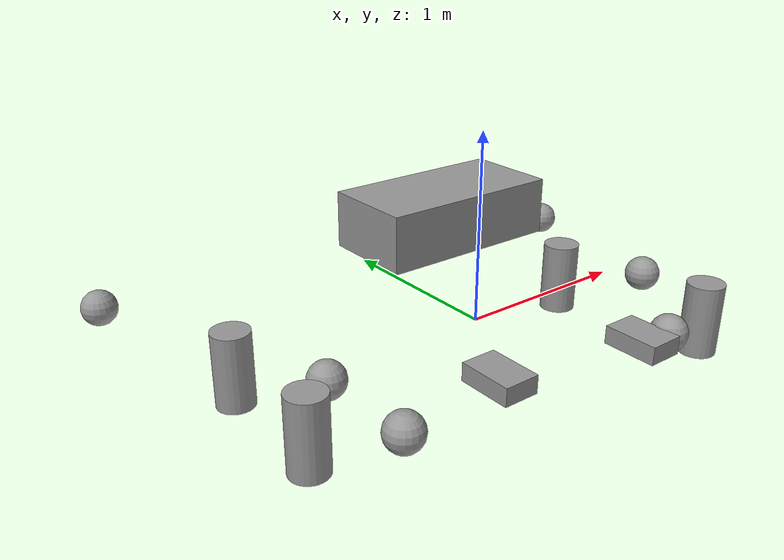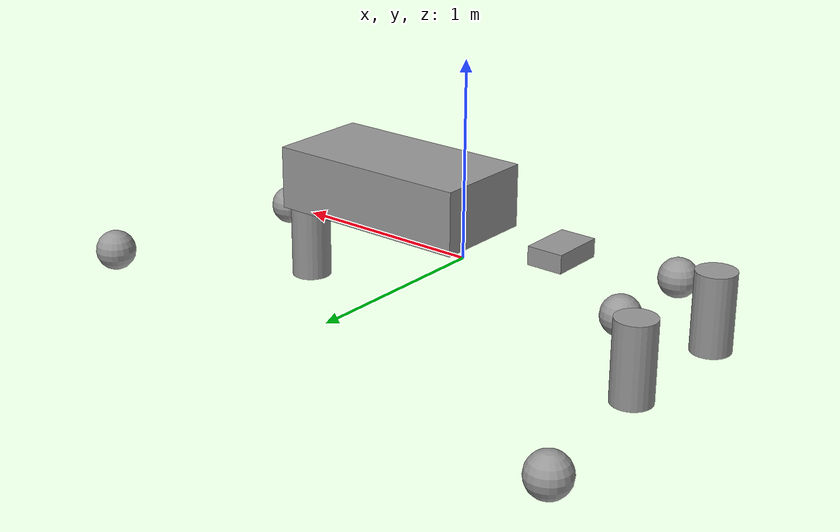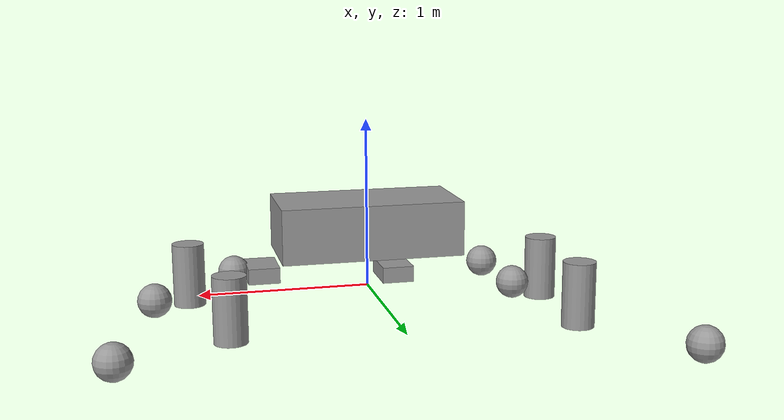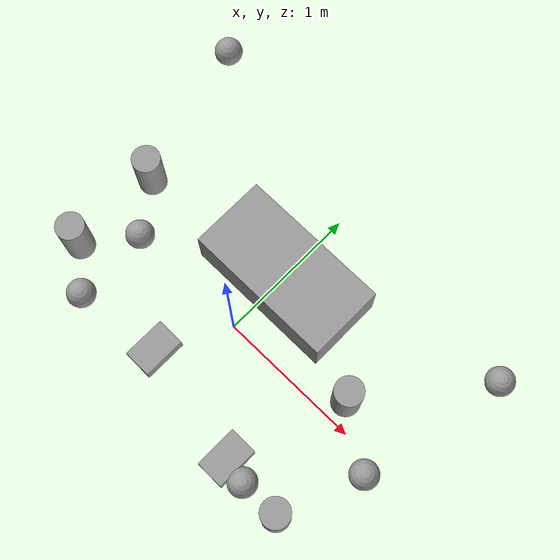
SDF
<?xml version='1.0'?>
<sdf version='1.6'>
  <model name='LegsBot'>
    <link name='link_0'>
      <pose frame=''>0.088459 0.39217 0.461538 0 -0 0</pose>
      <inertial>
        <mass>1</mass>
        <inertia>
          <ixx>0.166667</ixx>
          <ixy>0</ixy>
          <ixz>0</ixz>
          <iyy>0.166667</iyy>
          <iyz>0</iyz>
          <izz>0.166667</izz>
        </inertia>
        <pose frame=''>0 0 0 0 -0 0</pose>
      </inertial>
      <gravity>1</gravity>
      <self_collide>0</self_collide>
      <kinematic>0</kinematic>
      <visual name='visual'>
        <pose frame=''>0 0 0 0 -0 0</pose>
        <geometry>
          <box>
            <size>1 0.5 0.3</size>
          </box>
        </geometry>
        <material>
          <lighting>1</lighting>
          <script>
            <uri>file://media/materials/scripts/gazebo.material</uri>
            <name>Gazebo/Grey</name>
          </script>
          <shader type='pixel'>
            <normal_map>__default__</normal_map>
          </shader>
          <ambient>0.3 0.3 0.3 1</ambient>
          <diffuse>0.7 0.7 0.7 1</diffuse>
          <specular>0.01 0.01 0.01 1</specular>
          <emissive>0 0 0 1</emissive>
        </material>
        <transparency>0</transparency>
        <cast_shadows>1</cast_shadows>
      </visual>
      <collision name='collision'>
        <laser_retro>0</laser_retro>
        <max_contacts>10</max_contacts>
        <pose frame=''>0 0 0 0 -0 0</pose>
        <geometry>
          <box>
            <size>1 0.5 0.3</size>
          </box>
        </geometry>
        <surface>
          <friction>
            <ode>
              <mu>1</mu>
              <mu2>1</mu2>
              <fdir1>0 0 0</fdir1>
              <slip1>0</slip1>
              <slip2>0</slip2>
            </ode>
            <torsional>
              <coefficient>1</coefficient>
              <patch_radius>0</patch_radius>
              <surface_radius>0</surface_radius>
              <use_patch_radius>1</use_patch_radius>
              <ode>
                <slip>0</slip>
              </ode>
            </torsional>
          </friction>
          <bounce>
            <restitution_coefficient>0</restitution_coefficient>
            <threshold>1e+06</threshold>
          </bounce>
          <contact>
            <collide_without_contact>0</collide_without_contact>
            <collide_without_contact_bitmask>1</collide_without_contact_bitmask>
            <collide_bitmask>1</collide_bitmask>
            <ode>
              <soft_cfm>0</soft_cfm>
              <soft_erp>0.2</soft_erp>
              <kp>1e+13</kp>
              <kd>1</kd>
              <max_vel>0.01</max_vel>
              <min_depth>0</min_depth>
            </ode>
            <bullet>
              <split_impulse>1</split_impulse>
              <split_impulse_penetration_threshold>-0.01</split_impulse_penetration_threshold>
              <soft_cfm>0</soft_cfm>
              <soft_erp>0.2</soft_erp>
              <kp>1e+13</kp>
              <kd>1</kd>
            </bullet>
          </contact>
        </surface>
      </collision>
    </link>
    <link name='link_1'>
      <pose frame=''>-1.48034 1.40885 -0.038462 0 -0 0</pose>
      <inertial>
        <mass>1</mass>
        <inertia>
          <ixx>0.1</ixx>
          <ixy>0</ixy>
          <ixz>0</ixz>
          <iyy>0.1</iyy>
          <iyz>0</iyz>
          <izz>0.1</izz>
        </inertia>
        <pose frame=''>0 0 0 0 -0 0</pose>
      </inertial>
      <gravity>1</gravity>
      <self_collide>0</self_collide>
      <kinematic>0</kinematic>
      <visual name='visual'>
        <pose frame=''>0 0 0 0 -0 0</pose>
        <geometry>
          <sphere>
            <radius>0.1</radius>
          </sphere>
        </geometry>
        <material>
          <lighting>1</lighting>
          <script>
            <uri>file://media/materials/scripts/gazebo.material</uri>
            <name>Gazebo/Grey</name>
          </script>
          <shader type='pixel'>
            <normal_map>__default__</normal_map>
          </shader>
          <ambient>0.3 0.3 0.3 1</ambient>
          <diffuse>0.7 0.7 0.7 1</diffuse>
          <specular>0.01 0.01 0.01 1</specular>
          <emissive>0 0 0 1</emissive>
        </material>
        <transparency>0</transparency>
        <cast_shadows>1</cast_shadows>
      </visual>
      <collision name='collision'>
        <laser_retro>0</laser_retro>
        <max_contacts>10</max_contacts>
        <pose frame=''>0 0 0 0 -0 0</pose>
        <geometry>
          <sphere>
            <radius>0.1</radius>
          </sphere>
        </geometry>
        <surface>
          <friction>
            <ode>
              <mu>1</mu>
              <mu2>1</mu2>
              <fdir1>0 0 0</fdir1>
              <slip1>0</slip1>
              <slip2>0</slip2>
            </ode>
            <torsional>
              <coefficient>1</coefficient>
              <patch_radius>0</patch_radius>
              <surface_radius>0</surface_radius>
              <use_patch_radius>1</use_patch_radius>
              <ode>
                <slip>0</slip>
              </ode>
            </torsional>
          </friction>
          <bounce>
            <restitution_coefficient>0</restitution_coefficient>
            <threshold>1e+06</threshold>
          </bounce>
          <contact>
            <collide_without_contact>0</collide_without_contact>
            <collide_without_contact_bitmask>1</collide_without_contact_bitmask>
            <collide_bitmask>1</collide_bitmask>
            <ode>
              <soft_cfm>0</soft_cfm>
              <soft_erp>0.2</soft_erp>
              <kp>1e+13</kp>
              <kd>1</kd>
              <max_vel>0.01</max_vel>
              <min_depth>0</min_depth>
            </ode>
            <bullet>
              <split_impulse>1</split_impulse>
              <split_impulse_penetration_threshold>-0.01</split_impulse_penetration_threshold>
              <soft_cfm>0</soft_cfm>
              <soft_erp>0.2</soft_erp>
              <kp>1e+13</kp>
              <kd>1</kd>
            </bullet>
          </contact>
        </surface>
      </collision>
    </link>
    <link name='link_1_clone'>
      <pose frame=''>1.47226 0.949936 -0.038462 0 -0 0</pose>
      <inertial>
        <mass>1</mass>
        <inertia>
          <ixx>0.1</ixx>
          <ixy>0</ixy>
          <ixz>0</ixz>
          <iyy>0.1</iyy>
          <iyz>0</iyz>
          <izz>0.1</izz>
        </inertia>
        <pose frame=''>0 0 0 0 -0 0</pose>
      </inertial>
      <self_collide>0</self_collide>
      <kinematic>0</kinematic>
      <visual name='visual'>
        <pose frame=''>0 0 0 0 -0 0</pose>
        <geometry>
          <sphere>
            <radius>0.1</radius>
          </sphere>
        </geometry>
        <material>
          <lighting>1</lighting>
          <script>
            <uri>file://media/materials/scripts/gazebo.material</uri>
            <name>Gazebo/Grey</name>
          </script>
          <shader type='pixel'>
            <normal_map>__default__</normal_map>
          </shader>
          <ambient>0.3 0.3 0.3 1</ambient>
          <diffuse>0.7 0.7 0.7 1</diffuse>
          <specular>0.01 0.01 0.01 1</specular>
          <emissive>0 0 0 1</emissive>
        </material>
        <transparency>0</transparency>
        <cast_shadows>1</cast_shadows>
      </visual>
      <collision name='collision'>
        <laser_retro>0</laser_retro>
        <max_contacts>10</max_contacts>
        <pose frame=''>0 0 0 0 -0 0</pose>
        <geometry>
          <sphere>
            <radius>0.1</radius>
          </sphere>
        </geometry>
        <surface>
          <friction>
            <ode>
              <mu>1</mu>
              <mu2>1</mu2>
              <fdir1>0 0 0</fdir1>
              <slip1>0</slip1>
              <slip2>0</slip2>
            </ode>
            <torsional>
              <coefficient>1</coefficient>
              <patch_radius>0</patch_radius>
              <surface_radius>0</surface_radius>
              <use_patch_radius>1</use_patch_radius>
              <ode>
                <slip>0</slip>
              </ode>
            </torsional>
          </friction>
          <bounce>
            <restitution_coefficient>0</restitution_coefficient>
            <threshold>1e+06</threshold>
          </bounce>
          <contact>
            <collide_without_contact>0</collide_without_contact>
            <collide_without_contact_bitmask>1</collide_without_contact_bitmask>
            <collide_bitmask>1</collide_bitmask>
            <ode>
              <soft_cfm>0</soft_cfm>
              <soft_erp>0.2</soft_erp>
              <kp>1e+13</kp>
              <kd>1</kd>
              <max_vel>0.01</max_vel>
              <min_depth>0</min_depth>
            </ode>
            <bullet>
              <split_impulse>1</split_impulse>
              <split_impulse_penetration_threshold>-0.01</split_impulse_penetration_threshold>
              <soft_cfm>0</soft_cfm>
              <soft_erp>0.2</soft_erp>
              <kp>1e+13</kp>
              <kd>1</kd>
            </bullet>
          </contact>
        </surface>
      </collision>
    </link>
    <link name='link_1_clone_0'>
      <pose frame=''>-0.915807 0.013678 -0.038462 0 -0 0</pose>
      <inertial>
        <mass>1</mass>
        <inertia>
          <ixx>0.1</ixx>
          <ixy>0</ixy>
          <ixz>0</ixz>
          <iyy>0.1</iyy>
          <iyz>0</iyz>
          <izz>0.1</izz>
        </inertia>
        <pose frame=''>0 0 0 0 -0 0</pose>
      </inertial>
      <self_collide>0</self_collide>
      <kinematic>0</kinematic>
      <visual name='visual'>
        <pose frame=''>0 0 0 0 -0 0</pose>
        <geometry>
          <sphere>
            <radius>0.1</radius>
          </sphere>
        </geometry>
        <material>
          <lighting>1</lighting>
          <script>
            <uri>file://media/materials/scripts/gazebo.material</uri>
            <name>Gazebo/Grey</name>
          </script>
          <shader type='pixel'>
            <normal_map>__default__</normal_map>
          </shader>
          <ambient>0.3 0.3 0.3 1</ambient>
          <diffuse>0.7 0.7 0.7 1</diffuse>
          <specular>0.01 0.01 0.01 1</specular>
          <emissive>0 0 0 1</emissive>
        </material>
        <transparency>0</transparency>
        <cast_shadows>1</cast_shadows>
      </visual>
      <collision name='collision'>
        <laser_retro>0</laser_retro>
        <max_contacts>10</max_contacts>
        <pose frame=''>0 0 0 0 -0 0</pose>
        <geometry>
          <sphere>
            <radius>0.1</radius>
          </sphere>
        </geometry>
        <surface>
          <friction>
            <ode>
              <mu>1</mu>
              <mu2>1</mu2>
              <fdir1>0 0 0</fdir1>
              <slip1>0</slip1>
              <slip2>0</slip2>
            </ode>
            <torsional>
              <coefficient>1</coefficient>
              <patch_radius>0</patch_radius>
              <surface_radius>0</surface_radius>
              <use_patch_radius>1</use_patch_radius>
              <ode>
                <slip>0</slip>
              </ode>
            </torsional>
          </friction>
          <bounce>
            <restitution_coefficient>0</restitution_coefficient>
            <threshold>1e+06</threshold>
          </bounce>
          <contact>
            <collide_without_contact>0</collide_without_contact>
            <collide_without_contact_bitmask>1</collide_without_contact_bitmask>
            <collide_bitmask>1</collide_bitmask>
            <ode>
              <soft_cfm>0</soft_cfm>
              <soft_erp>0.2</soft_erp>
              <kp>1e+13</kp>
              <kd>1</kd>
              <max_vel>0.01</max_vel>
              <min_depth>0</min_depth>
            </ode>
            <bullet>
              <split_impulse>1</split_impulse>
              <split_impulse_penetration_threshold>-0.01</split_impulse_penetration_threshold>
              <soft_cfm>0</soft_cfm>
              <soft_erp>0.2</soft_erp>
              <kp>1e+13</kp>
              <kd>1</kd>
            </bullet>
          </contact>
        </surface>
      </collision>
    </link>
    <link name='link_1_clone_0_clone'>
      <pose frame=''>-0.892047 -0.540286 -0.038462 0 -0 0</pose>
      <inertial>
        <mass>1</mass>
        <inertia>
          <ixx>0.1</ixx>
          <ixy>0</ixy>
          <ixz>0</ixz>
          <iyy>0.1</iyy>
          <iyz>0</iyz>
          <izz>0.1</izz>
        </inertia>
        <pose frame=''>0 0 0 0 -0 0</pose>
      </inertial>
      <self_collide>0</self_collide>
      <kinematic>0</kinematic>
      <visual name='visual'>
        <pose frame=''>0 0 0 0 -0 0</pose>
        <geometry>
          <sphere>
            <radius>0.1</radius>
          </sphere>
        </geometry>
        <material>
          <lighting>1</lighting>
          <script>
            <uri>file://media/materials/scripts/gazebo.material</uri>
            <name>Gazebo/Grey</name>
          </script>
          <shader type='pixel'>
            <normal_map>__default__</normal_map>
          </shader>
          <ambient>0.3 0.3 0.3 1</ambient>
          <diffuse>0.7 0.7 0.7 1</diffuse>
          <specular>0.01 0.01 0.01 1</specular>
          <emissive>0 0 0 1</emissive>
        </material>
        <transparency>0</transparency>
        <cast_shadows>1</cast_shadows>
      </visual>
      <collision name='collision'>
        <laser_retro>0</laser_retro>
        <max_contacts>10</max_contacts>
        <pose frame=''>0 0 0 0 -0 0</pose>
        <geometry>
          <sphere>
            <radius>0.1</radius>
          </sphere>
        </geometry>
        <surface>
          <friction>
            <ode>
              <mu>1</mu>
              <mu2>1</mu2>
              <fdir1>0 0 0</fdir1>
              <slip1>0</slip1>
              <slip2>0</slip2>
            </ode>
            <torsional>
              <coefficient>1</coefficient>
              <patch_radius>0</patch_radius>
              <surface_radius>0</surface_radius>
              <use_patch_radius>1</use_patch_radius>
              <ode>
                <slip>0</slip>
              </ode>
            </torsional>
          </friction>
          <bounce>
            <restitution_coefficient>0</restitution_coefficient>
            <threshold>1e+06</threshold>
          </bounce>
          <contact>
            <collide_without_contact>0</collide_without_contact>
            <collide_without_contact_bitmask>1</collide_without_contact_bitmask>
            <collide_bitmask>1</collide_bitmask>
            <ode>
              <soft_cfm>0</soft_cfm>
              <soft_erp>0.2</soft_erp>
              <kp>1e+13</kp>
              <kd>1</kd>
              <max_vel>0.01</max_vel>
              <min_depth>0</min_depth>
            </ode>
            <bullet>
              <split_impulse>1</split_impulse>
              <split_impulse_penetration_threshold>-0.01</split_impulse_penetration_threshold>
              <soft_cfm>0</soft_cfm>
              <soft_erp>0.2</soft_erp>
              <kp>1e+13</kp>
              <kd>1</kd>
            </bullet>
          </contact>
        </surface>
      </collision>
    </link>
    <link name='link_1_clone_0_clone_0'>
      <pose frame=''>0.740716 -0.659285 -0.038462 0 -0 0</pose>
      <inertial>
        <mass>1</mass>
        <inertia>
          <ixx>0.1</ixx>
          <ixy>0</ixy>
          <ixz>0</ixz>
          <iyy>0.1</iyy>
          <iyz>0</iyz>
          <izz>0.1</izz>
        </inertia>
        <pose frame=''>0 0 0 0 -0 0</pose>
      </inertial>
      <self_collide>0</self_collide>
      <kinematic>0</kinematic>
      <visual name='visual'>
        <pose frame=''>0 0 0 0 -0 0</pose>
        <geometry>
          <sphere>
            <radius>0.1</radius>
          </sphere>
        </geometry>
        <material>
          <lighting>1</lighting>
          <script>
            <uri>file://media/materials/scripts/gazebo.material</uri>
            <name>Gazebo/Grey</name>
          </script>
          <shader type='pixel'>
            <normal_map>__default__</normal_map>
          </shader>
          <ambient>0.3 0.3 0.3 1</ambient>
          <diffuse>0.7 0.7 0.7 1</diffuse>
          <specular>0.01 0.01 0.01 1</specular>
          <emissive>0 0 0 1</emissive>
        </material>
        <transparency>0</transparency>
        <cast_shadows>1</cast_shadows>
      </visual>
      <collision name='collision'>
        <laser_retro>0</laser_retro>
        <max_contacts>10</max_contacts>
        <pose frame=''>0 0 0 0 -0 0</pose>
        <geometry>
          <sphere>
            <radius>0.1</radius>
          </sphere>
        </geometry>
        <surface>
          <friction>
            <ode>
              <mu>1</mu>
              <mu2>1</mu2>
              <fdir1>0 0 0</fdir1>
              <slip1>0</slip1>
              <slip2>0</slip2>
            </ode>
            <torsional>
              <coefficient>1</coefficient>
              <patch_radius>0</patch_radius>
              <surface_radius>0</surface_radius>
              <use_patch_radius>1</use_patch_radius>
              <ode>
                <slip>0</slip>
              </ode>
            </torsional>
          </friction>
          <bounce>
            <restitution_coefficient>0</restitution_coefficient>
            <threshold>1e+06</threshold>
          </bounce>
          <contact>
            <collide_without_contact>0</collide_without_contact>
            <collide_without_contact_bitmask>1</collide_without_contact_bitmask>
            <collide_bitmask>1</collide_bitmask>
            <ode>
              <soft_cfm>0</soft_cfm>
              <soft_erp>0.2</soft_erp>
              <kp>1e+13</kp>
              <kd>1</kd>
              <max_vel>0.01</max_vel>
              <min_depth>0</min_depth>
            </ode>
            <bullet>
              <split_impulse>1</split_impulse>
              <split_impulse_penetration_threshold>-0.01</split_impulse_penetration_threshold>
              <soft_cfm>0</soft_cfm>
              <soft_erp>0.2</soft_erp>
              <kp>1e+13</kp>
              <kd>1</kd>
            </bullet>
          </contact>
        </surface>
      </collision>
    </link>
    <link name='link_1_clone_1'>
      <pose frame=''>1.25056 -0.092689 -0.038462 0 -0 0</pose>
      <inertial>
        <mass>1</mass>
        <inertia>
          <ixx>0.1</ixx>
          <ixy>0</ixy>
          <ixz>0</ixz>
          <iyy>0.1</iyy>
          <iyz>0</iyz>
          <izz>0.1</izz>
        </inertia>
        <pose frame=''>0 0 0 0 -0 0</pose>
      </inertial>
      <self_collide>0</self_collide>
      <kinematic>0</kinematic>
      <visual name='visual'>
        <pose frame=''>0 0 0 0 -0 0</pose>
        <geometry>
          <sphere>
            <radius>0.1</radius>
          </sphere>
        </geometry>
        <material>
          <lighting>1</lighting>
          <script>
            <uri>file://media/materials/scripts/gazebo.material</uri>
            <name>Gazebo/Grey</name>
          </script>
          <shader type='pixel'>
            <normal_map>__default__</normal_map>
          </shader>
          <ambient>0.3 0.3 0.3 1</ambient>
          <diffuse>0.7 0.7 0.7 1</diffuse>
          <specular>0.01 0.01 0.01 1</specular>
          <emissive>0 0 0 1</emissive>
        </material>
        <transparency>0</transparency>
        <cast_shadows>1</cast_shadows>
      </visual>
      <collision name='collision'>
        <laser_retro>0</laser_retro>
        <max_contacts>10</max_contacts>
        <pose frame=''>0 0 0 0 -0 0</pose>
        <geometry>
          <sphere>
            <radius>0.1</radius>
          </sphere>
        </geometry>
        <surface>
          <friction>
            <ode>
              <mu>1</mu>
              <mu2>1</mu2>
              <fdir1>0 0 0</fdir1>
              <slip1>0</slip1>
              <slip2>0</slip2>
            </ode>
            <torsional>
              <coefficient>1</coefficient>
              <patch_radius>0</patch_radius>
              <surface_radius>0</surface_radius>
              <use_patch_radius>1</use_patch_radius>
              <ode>
                <slip>0</slip>
              </ode>
            </torsional>
          </friction>
          <bounce>
            <restitution_coefficient>0</restitution_coefficient>
            <threshold>1e+06</threshold>
          </bounce>
          <contact>
            <collide_without_contact>0</collide_without_contact>
            <collide_without_contact_bitmask>1</collide_without_contact_bitmask>
            <collide_bitmask>1</collide_bitmask>
            <ode>
              <soft_cfm>0</soft_cfm>
              <soft_erp>0.2</soft_erp>
              <kp>1e+13</kp>
              <kd>1</kd>
              <max_vel>0.01</max_vel>
              <min_depth>0</min_depth>
            </ode>
            <bullet>
              <split_impulse>1</split_impulse>
              <split_impulse_penetration_threshold>-0.01</split_impulse_penetration_threshold>
              <soft_cfm>0</soft_cfm>
              <soft_erp>0.2</soft_erp>
              <kp>1e+13</kp>
              <kd>1</kd>
            </bullet>
          </contact>
        </surface>
      </collision>
    </link>
    <link name='link_2'>
      <pose frame=''>-1.20948 0.37696 -0.038462 0 -0 0</pose>
      <inertial>
        <mass>1</mass>
        <inertia>
          <ixx>0.145833</ixx>
          <ixy>0</ixy>
          <ixz>0</ixz>
          <iyy>0.145833</iyy>
          <iyz>0</iyz>
          <izz>0.125</izz>
        </inertia>
        <pose frame=''>0 0 0 0 -0 0</pose>
      </inertial>
      <gravity>1</gravity>
      <self_collide>0</self_collide>
      <kinematic>0</kinematic>
      <visual name='visual'>
        <pose frame=''>0 0 0 0 -0 0</pose>
        <geometry>
          <cylinder>
            <radius>0.1</radius>
            <length>0.4</length>
          </cylinder>
        </geometry>
        <material>
          <lighting>1</lighting>
          <script>
            <uri>file://media/materials/scripts/gazebo.material</uri>
            <name>Gazebo/Grey</name>
          </script>
          <shader type='pixel'>
            <normal_map>__default__</normal_map>
          </shader>
          <ambient>0.3 0.3 0.3 1</ambient>
          <diffuse>0.7 0.7 0.7 1</diffuse>
          <specular>0.01 0.01 0.01 1</specular>
          <emissive>0 0 0 1</emissive>
        </material>
        <transparency>0</transparency>
        <cast_shadows>1</cast_shadows>
      </visual>
      <collision name='collision'>
        <laser_retro>0</laser_retro>
        <max_contacts>10</max_contacts>
        <pose frame=''>0 0 0 0 -0 0</pose>
        <geometry>
          <cylinder>
            <radius>0.1</radius>
            <length>0.4</length>
          </cylinder>
        </geometry>
        <surface>
          <friction>
            <ode>
              <mu>1</mu>
              <mu2>1</mu2>
              <fdir1>0 0 0</fdir1>
              <slip1>0</slip1>
              <slip2>0</slip2>
            </ode>
            <torsional>
              <coefficient>1</coefficient>
              <patch_radius>0</patch_radius>
              <surface_radius>0</surface_radius>
              <use_patch_radius>1</use_patch_radius>
              <ode>
                <slip>0</slip>
              </ode>
            </torsional>
          </friction>
          <bounce>
            <restitution_coefficient>0</restitution_coefficient>
            <threshold>1e+06</threshold>
          </bounce>
          <contact>
            <collide_without_contact>0</collide_without_contact>
            <collide_without_contact_bitmask>1</collide_without_contact_bitmask>
            <collide_bitmask>1</collide_bitmask>
            <ode>
              <soft_cfm>0</soft_cfm>
              <soft_erp>0.2</soft_erp>
              <kp>1e+13</kp>
              <kd>1</kd>
              <max_vel>0.01</max_vel>
              <min_depth>0</min_depth>
            </ode>
            <bullet>
              <split_impulse>1</split_impulse>
              <split_impulse_penetration_threshold>-0.01</split_impulse_penetration_threshold>
              <soft_cfm>0</soft_cfm>
              <soft_erp>0.2</soft_erp>
              <kp>1e+13</kp>
              <kd>1</kd>
            </bullet>
          </contact>
        </surface>
      </collision>
    </link>
    <link name='link_2_clone'>
      <pose frame=''>0.838544 0.189481 -0.038462 0 -0 0</pose>
      <inertial>
        <mass>1</mass>
        <inertia>
          <ixx>0.145833</ixx>
          <ixy>0</ixy>
          <ixz>0</ixz>
          <iyy>0.145833</iyy>
          <iyz>0</iyz>
          <izz>0.125</izz>
        </inertia>
        <pose frame=''>0 0 0 0 -0 0</pose>
      </inertial>
      <self_collide>0</self_collide>
      <kinematic>0</kinematic>
      <visual name='visual'>
        <pose frame=''>0 0 0 0 -0 0</pose>
        <geometry>
          <cylinder>
            <radius>0.1</radius>
            <length>0.4</length>
          </cylinder>
        </geometry>
        <material>
          <lighting>1</lighting>
          <script>
            <uri>file://media/materials/scripts/gazebo.material</uri>
            <name>Gazebo/Grey</name>
          </script>
          <shader type='pixel'>
            <normal_map>__default__</normal_map>
          </shader>
          <ambient>0.3 0.3 0.3 1</ambient>
          <diffuse>0.7 0.7 0.7 1</diffuse>
          <specular>0.01 0.01 0.01 1</specular>
          <emissive>0 0 0 1</emissive>
        </material>
        <transparency>0</transparency>
        <cast_shadows>1</cast_shadows>
      </visual>
      <collision name='collision'>
        <laser_retro>0</laser_retro>
        <max_contacts>10</max_contacts>
        <pose frame=''>0 0 0 0 -0 0</pose>
        <geometry>
          <cylinder>
            <radius>0.1</radius>
            <length>0.4</length>
          </cylinder>
        </geometry>
        <surface>
          <friction>
            <ode>
              <mu>1</mu>
              <mu2>1</mu2>
              <fdir1>0 0 0</fdir1>
              <slip1>0</slip1>
              <slip2>0</slip2>
            </ode>
            <torsional>
              <coefficient>1</coefficient>
              <patch_radius>0</patch_radius>
              <surface_radius>0</surface_radius>
              <use_patch_radius>1</use_patch_radius>
              <ode>
                <slip>0</slip>
              </ode>
            </torsional>
          </friction>
          <bounce>
            <restitution_coefficient>0</restitution_coefficient>
            <threshold>1e+06</threshold>
          </bounce>
          <contact>
            <collide_without_contact>0</collide_without_contact>
            <collide_without_contact_bitmask>1</collide_without_contact_bitmask>
            <collide_bitmask>1</collide_bitmask>
            <ode>
              <soft_cfm>0</soft_cfm>
              <soft_erp>0.2</soft_erp>
              <kp>1e+13</kp>
              <kd>1</kd>
              <max_vel>0.01</max_vel>
              <min_depth>0</min_depth>
            </ode>
            <bullet>
              <split_impulse>1</split_impulse>
              <split_impulse_penetration_threshold>-0.01</split_impulse_penetration_threshold>
              <soft_cfm>0</soft_cfm>
              <soft_erp>0.2</soft_erp>
              <kp>1e+13</kp>
              <kd>1</kd>
            </bullet>
          </contact>
        </surface>
      </collision>
    </link>
    <link name='link_2_clone_0'>
      <pose frame=''>-1.21726 -0.29873 -0.038462 0 -0 0</pose>
      <inertial>
        <mass>1</mass>
        <inertia>
          <ixx>0.145833</ixx>
          <ixy>0</ixy>
          <ixz>0</ixz>
          <iyy>0.145833</iyy>
          <iyz>0</iyz>
          <izz>0.125</izz>
        </inertia>
        <pose frame=''>0 0 0 0 -0 0</pose>
      </inertial>
      <self_collide>0</self_collide>
      <kinematic>0</kinematic>
      <visual name='visual'>
        <pose frame=''>0 0 0 0 -0 0</pose>
        <geometry>
          <cylinder>
            <radius>0.1</radius>
            <length>0.4</length>
          </cylinder>
        </geometry>
        <material>
          <lighting>1</lighting>
          <script>
            <uri>file://media/materials/scripts/gazebo.material</uri>
            <name>Gazebo/Grey</name>
          </script>
          <shader type='pixel'>
            <normal_map>__default__</normal_map>
          </shader>
          <ambient>0.3 0.3 0.3 1</ambient>
          <diffuse>0.7 0.7 0.7 1</diffuse>
          <specular>0.01 0.01 0.01 1</specular>
          <emissive>0 0 0 1</emissive>
        </material>
        <transparency>0</transparency>
        <cast_shadows>1</cast_shadows>
      </visual>
      <collision name='collision'>
        <laser_retro>0</laser_retro>
        <max_contacts>10</max_contacts>
        <pose frame=''>0 0 0 0 -0 0</pose>
        <geometry>
          <cylinder>
            <radius>0.1</radius>
            <length>0.4</length>
          </cylinder>
        </geometry>
        <surface>
          <friction>
            <ode>
              <mu>1</mu>
              <mu2>1</mu2>
              <fdir1>0 0 0</fdir1>
              <slip1>0</slip1>
              <slip2>0</slip2>
            </ode>
            <torsional>
              <coefficient>1</coefficient>
              <patch_radius>0</patch_radius>
              <surface_radius>0</surface_radius>
              <use_patch_radius>1</use_patch_radius>
              <ode>
                <slip>0</slip>
              </ode>
            </torsional>
          </friction>
          <bounce>
            <restitution_coefficient>0</restitution_coefficient>
            <threshold>1e+06</threshold>
          </bounce>
          <contact>
            <collide_without_contact>0</collide_without_contact>
            <collide_without_contact_bitmask>1</collide_without_contact_bitmask>
            <collide_bitmask>1</collide_bitmask>
            <ode>
              <soft_cfm>0</soft_cfm>
              <soft_erp>0.2</soft_erp>
              <kp>1e+13</kp>
              <kd>1</kd>
              <max_vel>0.01</max_vel>
              <min_depth>0</min_depth>
            </ode>
            <bullet>
              <split_impulse>1</split_impulse>
              <split_impulse_penetration_threshold>-0.01</split_impulse_penetration_threshold>
              <soft_cfm>0</soft_cfm>
              <soft_erp>0.2</soft_erp>
              <kp>1e+13</kp>
              <kd>1</kd>
            </bullet>
          </contact>
        </surface>
      </collision>
    </link>
    <link name='link_2_clone_1'>
      <pose frame=''>1.02597 -0.654373 -0.038462 0 -0 0</pose>
      <inertial>
        <mass>1</mass>
        <inertia>
          <ixx>0.145833</ixx>
          <ixy>0</ixy>
          <ixz>0</ixz>
          <iyy>0.145833</iyy>
          <iyz>0</iyz>
          <izz>0.125</izz>
        </inertia>
        <pose frame=''>0 0 0 0 -0 0</pose>
      </inertial>
      <self_collide>0</self_collide>
      <kinematic>0</kinematic>
      <visual name='visual'>
        <pose frame=''>0 0 0 0 -0 0</pose>
        <geometry>
          <cylinder>
            <radius>0.1</radius>
            <length>0.4</length>
          </cylinder>
        </geometry>
        <material>
          <lighting>1</lighting>
          <script>
            <uri>file://media/materials/scripts/gazebo.material</uri>
            <name>Gazebo/Grey</name>
          </script>
          <shader type='pixel'>
            <normal_map>__default__</normal_map>
          </shader>
          <ambient>0.3 0.3 0.3 1</ambient>
          <diffuse>0.7 0.7 0.7 1</diffuse>
          <specular>0.01 0.01 0.01 1</specular>
          <emissive>0 0 0 1</emissive>
        </material>
        <transparency>0</transparency>
        <cast_shadows>1</cast_shadows>
      </visual>
      <collision name='collision'>
        <laser_retro>0</laser_retro>
        <max_contacts>10</max_contacts>
        <pose frame=''>0 0 0 0 -0 0</pose>
        <geometry>
          <cylinder>
            <radius>0.1</radius>
            <length>0.4</length>
          </cylinder>
        </geometry>
        <surface>
          <friction>
            <ode>
              <mu>1</mu>
              <mu2>1</mu2>
              <fdir1>0 0 0</fdir1>
              <slip1>0</slip1>
              <slip2>0</slip2>
            </ode>
            <torsional>
              <coefficient>1</coefficient>
              <patch_radius>0</patch_radius>
              <surface_radius>0</surface_radius>
              <use_patch_radius>1</use_patch_radius>
              <ode>
                <slip>0</slip>
              </ode>
            </torsional>
          </friction>
          <bounce>
            <restitution_coefficient>0</restitution_coefficient>
            <threshold>1e+06</threshold>
          </bounce>
          <contact>
            <collide_without_contact>0</collide_without_contact>
            <collide_without_contact_bitmask>1</collide_without_contact_bitmask>
            <collide_bitmask>1</collide_bitmask>
            <ode>
              <soft_cfm>0</soft_cfm>
              <soft_erp>0.2</soft_erp>
              <kp>1e+13</kp>
              <kd>1</kd>
              <max_vel>0.01</max_vel>
              <min_depth>0</min_depth>
            </ode>
            <bullet>
              <split_impulse>1</split_impulse>
              <split_impulse_penetration_threshold>-0.01</split_impulse_penetration_threshold>
              <soft_cfm>0</soft_cfm>
              <soft_erp>0.2</soft_erp>
              <kp>1e+13</kp>
              <kd>1</kd>
            </bullet>
          </contact>
        </surface>
      </collision>
    </link>
    <link name='link_3'>
      <pose frame=''>-0.267376 -0.46056 -0.038462 0 -0 0</pose>
      <inertial>
        <mass>1</mass>
        <inertia>
          <ixx>0.166667</ixx>
          <ixy>0</ixy>
          <ixz>0</ixz>
          <iyy>0.166667</iyy>
          <iyz>0</iyz>
          <izz>0.166667</izz>
        </inertia>
        <pose frame=''>0 0 0 0 -0 0</pose>
      </inertial>
      <gravity>1</gravity>
      <self_collide>0</self_collide>
      <kinematic>0</kinematic>
      <visual name='visual'>
        <pose frame=''>0 0 0 0 -0 0</pose>
        <geometry>
          <box>
            <size>0.2 0.3 0.1</size>
          </box>
        </geometry>
        <material>
          <lighting>1</lighting>
          <script>
            <uri>file://media/materials/scripts/gazebo.material</uri>
            <name>Gazebo/Grey</name>
          </script>
          <shader type='pixel'>
            <normal_map>__default__</normal_map>
          </shader>
          <ambient>0.3 0.3 0.3 1</ambient>
          <diffuse>0.7 0.7 0.7 1</diffuse>
          <specular>0.01 0.01 0.01 1</specular>
          <emissive>0 0 0 1</emissive>
        </material>
        <transparency>0</transparency>
        <cast_shadows>1</cast_shadows>
      </visual>
      <collision name='collision'>
        <laser_retro>0</laser_retro>
        <max_contacts>10</max_contacts>
        <pose frame=''>0 0 0 0 -0 0</pose>
        <geometry>
          <box>
            <size>0.2 0.3 0.1</size>
          </box>
        </geometry>
        <surface>
          <friction>
            <ode>
              <mu>1</mu>
              <mu2>1</mu2>
              <fdir1>0 0 0</fdir1>
              <slip1>0</slip1>
              <slip2>0</slip2>
            </ode>
            <torsional>
              <coefficient>1</coefficient>
              <patch_radius>0</patch_radius>
              <surface_radius>0</surface_radius>
              <use_patch_radius>1</use_patch_radius>
              <ode>
                <slip>0</slip>
              </ode>
            </torsional>
          </friction>
          <bounce>
            <restitution_coefficient>0</restitution_coefficient>
            <threshold>1e+06</threshold>
          </bounce>
          <contact>
            <collide_without_contact>0</collide_without_contact>
            <collide_without_contact_bitmask>1</collide_without_contact_bitmask>
            <collide_bitmask>1</collide_bitmask>
            <ode>
              <soft_cfm>0</soft_cfm>
              <soft_erp>0.2</soft_erp>
              <kp>1e+13</kp>
              <kd>1</kd>
              <max_vel>0.01</max_vel>
              <min_depth>0</min_depth>
            </ode>
            <bullet>
              <split_impulse>1</split_impulse>
              <split_impulse_penetration_threshold>-0.01</split_impulse_penetration_threshold>
              <soft_cfm>0</soft_cfm>
              <soft_erp>0.2</soft_erp>
              <kp>1e+13</kp>
              <kd>1</kd>
            </bullet>
          </contact>
        </surface>
      </collision>
    </link>
    <link name='link_3_clone'>
      <pose frame=''>0.565812 -0.625149 -0.038462 0 -0 0</pose>
      <inertial>
        <mass>1</mass>
        <inertia>
          <ixx>0.166667</ixx>
          <ixy>0</ixy>
          <ixz>0</ixz>
          <iyy>0.166667</iyy>
          <iyz>0</iyz>
          <izz>0.166667</izz>
        </inertia>
        <pose frame=''>0 0 0 0 -0 0</pose>
      </inertial>
      <self_collide>0</self_collide>
      <kinematic>0</kinematic>
      <visual name='visual'>
        <pose frame=''>0 0 0 0 -0 0</pose>
        <geometry>
          <box>
            <size>0.2 0.3 0.1</size>
          </box>
        </geometry>
        <material>
          <lighting>1</lighting>
          <script>
            <uri>file://media/materials/scripts/gazebo.material</uri>
            <name>Gazebo/Grey</name>
          </script>
          <shader type='pixel'>
            <normal_map>__default__</normal_map>
          </shader>
          <ambient>0.3 0.3 0.3 1</ambient>
          <diffuse>0.7 0.7 0.7 1</diffuse>
          <specular>0.01 0.01 0.01 1</specular>
          <emissive>0 0 0 1</emissive>
        </material>
        <transparency>0</transparency>
        <cast_shadows>1</cast_shadows>
      </visual>
      <collision name='collision'>
        <laser_retro>0</laser_retro>
        <max_contacts>10</max_contacts>
        <pose frame=''>0 0 0 0 -0 0</pose>
        <geometry>
          <box>
            <size>0.2 0.3 0.1</size>
          </box>
        </geometry>
        <surface>
          <friction>
            <ode>
              <mu>1</mu>
              <mu2>1</mu2>
              <fdir1>0 0 0</fdir1>
              <slip1>0</slip1>
              <slip2>0</slip2>
            </ode>
            <torsional>
              <coefficient>1</coefficient>
              <patch_radius>0</patch_radius>
              <surface_radius>0</surface_radius>
              <use_patch_radius>1</use_patch_radius>
              <ode>
                <slip>0</slip>
              </ode>
            </torsional>
          </friction>
          <bounce>
            <restitution_coefficient>0</restitution_coefficient>
            <threshold>1e+06</threshold>
          </bounce>
          <contact>
            <collide_without_contact>0</collide_without_contact>
            <collide_without_contact_bitmask>1</collide_without_contact_bitmask>
            <collide_bitmask>1</collide_bitmask>
            <ode>
              <soft_cfm>0</soft_cfm>
              <soft_erp>0.2</soft_erp>
              <kp>1e+13</kp>
              <kd>1</kd>
              <max_vel>0.01</max_vel>
              <min_depth>0</min_depth>
            </ode>
            <bullet>
              <split_impulse>1</split_impulse>
              <split_impulse_penetration_threshold>-0.01</split_impulse_penetration_threshold>
              <soft_cfm>0</soft_cfm>
              <soft_erp>0.2</soft_erp>
              <kp>1e+13</kp>
              <kd>1</kd>
            </bullet>
          </contact>
        </surface>
      </collision>
    </link>
    <static>0</static>
    <allow_auto_disable>1</allow_auto_disable>
  </model>
</sdf>
